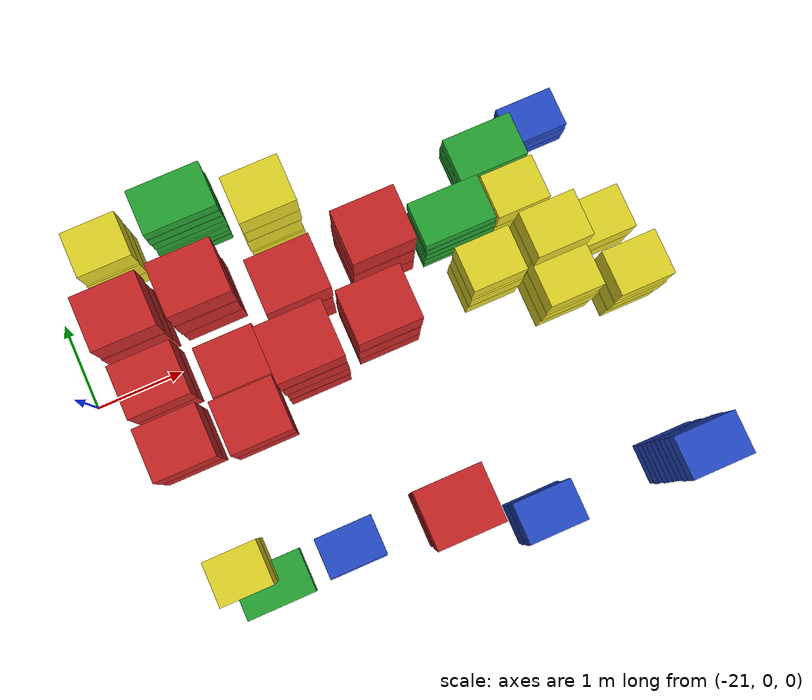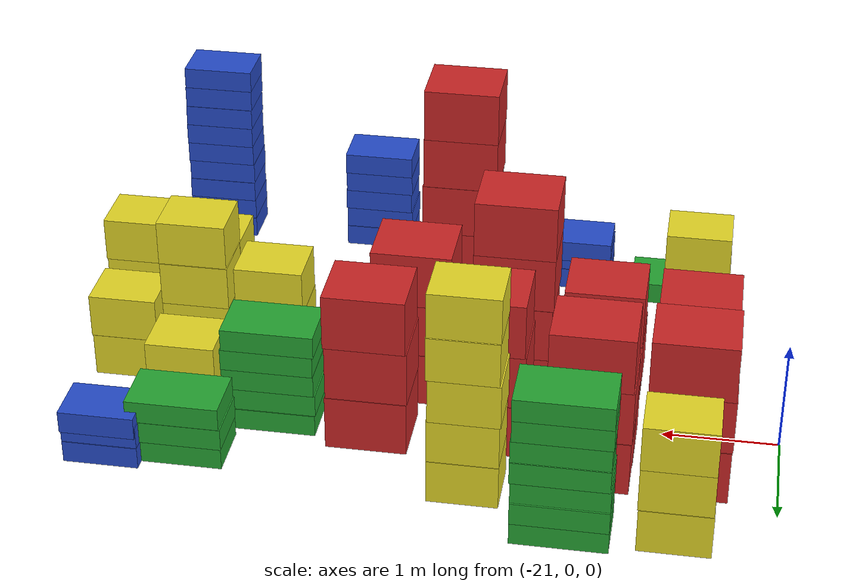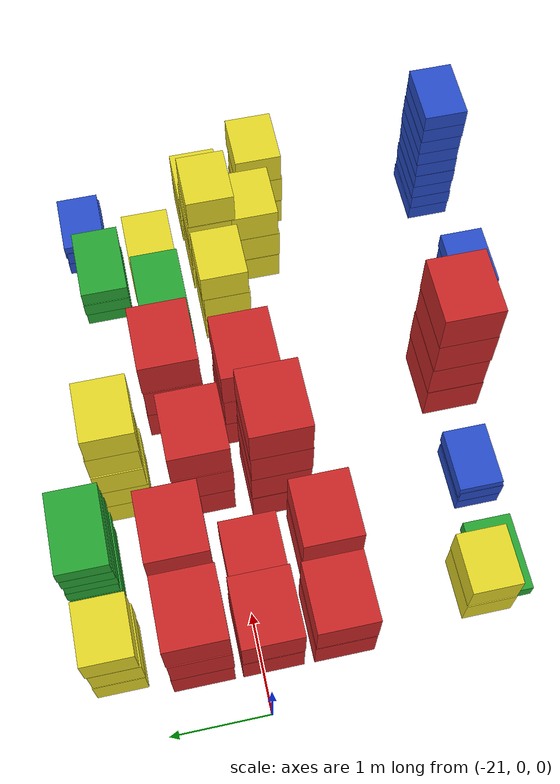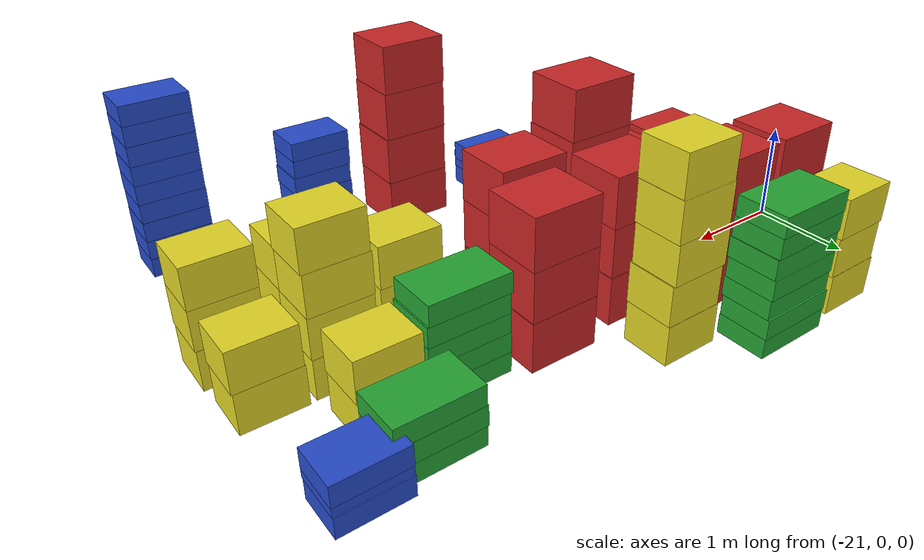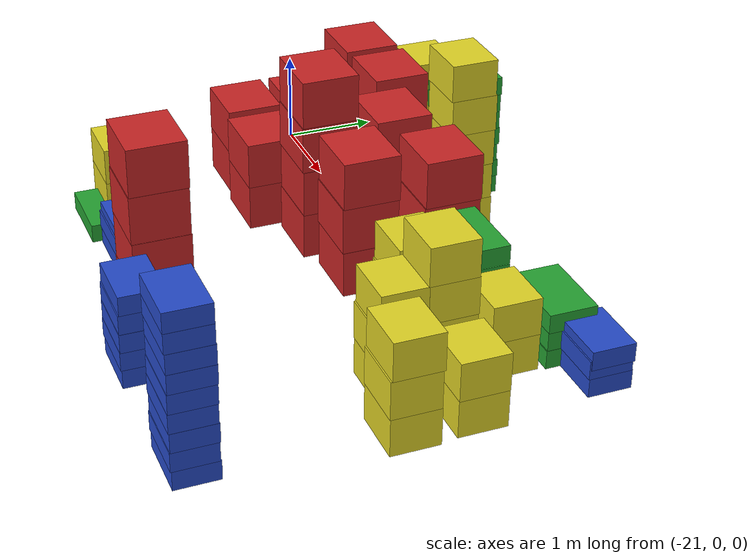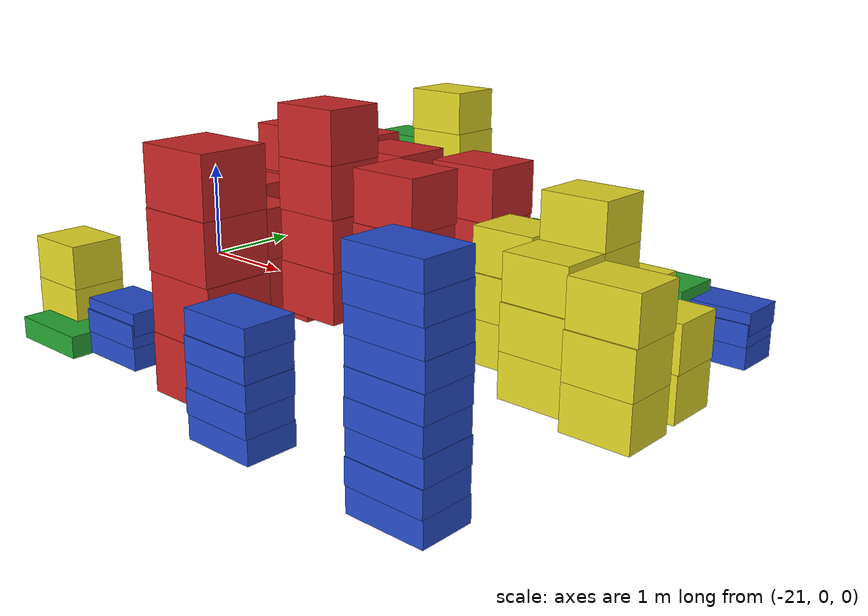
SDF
<sdf version="1.6">
 <world name="default">
  <include><uri>model://sun</uri></include>
  <model name="baggage_C_x2_1">
   <model name="baggage_C_0">
    <static>1</static>
    <link name="link">
     <collision name="collision"><geometry><box><size>0.6 0.5 0.4</size></box></geometry></collision>
     <visual name="visual">
      <geometry><box><size>0.6 0.5 0.4</size></box></geometry>
      <material>
       <script><uri>file://media/materials/scripts/gazebo.material</uri><name>Gazebo/Yellow</name></script>
      </material>
     </visual>
    </link>
    <pose>0 0 0.2 0 -0 0</pose>
   </model>
   <model name="baggage_C_1">
    <static>1</static>
    <link name="link">
     <collision name="collision"><geometry><box><size>0.6 0.5 0.4</size></box></geometry></collision>
     <visual name="visual">
      <geometry><box><size>0.6 0.5 0.4</size></box></geometry>
      <material>
       <script><uri>file://media/materials/scripts/gazebo.material</uri><name>Gazebo/Yellow</name></script>
      </material>
     </visual>
    </link>
    <pose>0.0093 -0.002 0.6 0 -0 0</pose>
   </model>
   <pose>-20.1836 -2.27258 0 0 -0 0</pose>
  </model>
  <model name="baggage_D">
   <static>1</static>
   <link name="link">
    <collision name="collision"><geometry><box><size>0.8 0.5 0.2</size></box></geometry></collision>
    <visual name="visual">
     <geometry><box><size>0.8 0.5 0.2</size></box></geometry>
     <material>
      <script><uri>file://media/materials/scripts/gazebo.material</uri><name>Gazebo/Green</name></script>
     </material>
    </visual>
   </link>
   <pose>-19.9589 -2.53745 0 0 -0 0</pose>
  </model>
  <model name="baggage_B_x3_0">
   <model name="baggage_B_0">
    <static>1</static>
    <link name="link">
     <collision name="collision"><geometry><box><size>0.65 0.45 0.2</size></box></geometry></collision>
     <visual name="visual">
      <geometry><box><size>0.65 0.45 0.2</size></box></geometry>
      <material>
       <script><uri>file://media/materials/scripts/gazebo.material</uri><name>Gazebo/Blue</name></script>
      </material>
     </visual>
    </link>
    <pose>0 0 0.1 0 -0 0</pose>
   </model>
   <model name="baggage_B_1">
    <static>1</static>
    <link name="link">
     <collision name="collision"><geometry><box><size>0.65 0.45 0.2</size></box></geometry></collision>
     <visual name="visual">
      <geometry><box><size>0.65 0.45 0.2</size></box></geometry>
      <material>
       <script><uri>file://media/materials/scripts/gazebo.material</uri><name>Gazebo/Blue</name></script>
      </material>
     </visual>
    </link>
    <pose>0.0028 -0.0086 0.3 0 -0 0</pose>
   </model>
   <model name="baggage_B_2">
    <static>1</static>
    <link name="link">
     <collision name="collision"><geometry><box><size>0.65 0.45 0.2</size></box></geometry></collision>
     <visual name="visual">
      <geometry><box><size>0.65 0.45 0.2</size></box></geometry>
      <material>
       <script><uri>file://media/materials/scripts/gazebo.material</uri><name>Gazebo/Blue</name></script>
      </material>
     </visual>
    </link>
    <pose>0.0092 0.006 0.4 0 -0 0</pose>
   </model>
   <pose>-19.0322 -2.49703 0 0 -0 0</pose>
  </model>
  <model name="baggage_A_x4_1">
   <model name="baggage_A_0">
    <static>1</static>
    <link name="link">
     <collision name="collision"><geometry><box><size>0.7 0.6 0.5</size></box></geometry></collision>
     <visual name="visual">
      <geometry><box><size>0.7 0.6 0.5</size></box></geometry>
      <material>
       <script><uri>file://media/materials/scripts/gazebo.material</uri><name>Gazebo/Red</name></script>
      </material>
     </visual>
    </link>
    <pose>0 0 0.25 0 -0 0</pose>
   </model>
   <model name="baggage_A_1">
    <static>1</static>
    <link name="link">
     <collision name="collision"><geometry><box><size>0.7 0.6 0.5</size></box></geometry></collision>
     <visual name="visual">
      <geometry><box><size>0.7 0.6 0.5</size></box></geometry>
      <material>
       <script><uri>file://media/materials/scripts/gazebo.material</uri><name>Gazebo/Red</name></script>
      </material>
     </visual>
    </link>
    <pose>0.0053 0.0033 0.75 0 -0 0</pose>
   </model>
   <model name="baggage_A_2">
    <static>1</static>
    <link name="link">
     <collision name="collision"><geometry><box><size>0.7 0.6 0.5</size></box></geometry></collision>
     <visual name="visual">
      <geometry><box><size>0.7 0.6 0.5</size></box></geometry>
      <material>
       <script><uri>file://media/materials/scripts/gazebo.material</uri><name>Gazebo/Red</name></script>
      </material>
     </visual>
    </link>
    <pose>-0.0056 -0.0003 1.25 0 -0 0</pose>
   </model>
   <model name="baggage_A_3">
    <static>1</static>
    <link name="link">
     <collision name="collision"><geometry><box><size>0.7 0.6 0.5</size></box></geometry></collision>
     <visual name="visual">
      <geometry><box><size>0.7 0.6 0.5</size></box></geometry>
      <material>
       <script><uri>file://media/materials/scripts/gazebo.material</uri><name>Gazebo/Red</name></script>
      </material>
     </visual>
    </link>
    <pose>-0.0098 0.0065 1.75 0 -0 0</pose>
   </model>
   <pose>-17.8916 -2.53612 0 0 -0 0</pose>
  </model>
  <model name="baggage_B_x5_1">
   <model name="baggage_B_0">
    <static>1</static>
    <link name="link">
     <collision name="collision"><geometry><box><size>0.65 0.45 0.2</size></box></geometry></collision>
     <visual name="visual">
      <geometry><box><size>0.65 0.45 0.2</size></box></geometry>
      <material>
       <script><uri>file://media/materials/scripts/gazebo.material</uri><name>Gazebo/Blue</name></script>
      </material>
     </visual>
    </link>
    <pose>0 0 0.1 0 -0 0</pose>
   </model>
   <model name="baggage_B_1">
    <static>1</static>
    <link name="link">
     <collision name="collision"><geometry><box><size>0.65 0.45 0.2</size></box></geometry></collision>
     <visual name="visual">
      <geometry><box><size>0.65 0.45 0.2</size></box></geometry>
      <material>
       <script><uri>file://media/materials/scripts/gazebo.material</uri><name>Gazebo/Blue</name></script>
      </material>
     </visual>
    </link>
    <pose>-0.0014 -0.0091 0.3 0 -0 0</pose>
   </model>
   <model name="baggage_B_2">
    <static>1</static>
    <link name="link">
     <collision name="collision"><geometry><box><size>0.65 0.45 0.2</size></box></geometry></collision>
     <visual name="visual">
      <geometry><box><size>0.65 0.45 0.2</size></box></geometry>
      <material>
       <script><uri>file://media/materials/scripts/gazebo.material</uri><name>Gazebo/Blue</name></script>
      </material>
     </visual>
    </link>
    <pose>0.0076 -0.0066 0.5 0 -0 0</pose>
   </model>
   <model name="baggage_B_3">
    <static>1</static>
    <link name="link">
     <collision name="collision"><geometry><box><size>0.65 0.45 0.2</size></box></geometry></collision>
     <visual name="visual">
      <geometry><box><size>0.65 0.45 0.2</size></box></geometry>
      <material>
       <script><uri>file://media/materials/scripts/gazebo.material</uri><name>Gazebo/Blue</name></script>
      </material>
     </visual>
    </link>
    <pose>0 -0.0032 0.7 0 -0 0</pose>
   </model>
   <model name="baggage_B_4">
    <static>1</static>
    <link name="link">
     <collision name="collision"><geometry><box><size>0.65 0.45 0.2</size></box></geometry></collision>
     <visual name="visual">
      <geometry><box><size>0.65 0.45 0.2</size></box></geometry>
      <material>
       <script><uri>file://media/materials/scripts/gazebo.material</uri><name>Gazebo/Blue</name></script>
      </material>
     </visual>
    </link>
    <pose>0.0023 0.0073 0.9 0 -0 0</pose>
   </model>
   <pose>-17.0203 -2.97574 0 0 -0 0</pose>
  </model>
  <model name="baggage_A_x2">
   <model name="baggage_A_0">
    <static>1</static>
    <link name="link">
     <collision name="collision"><geometry><box><size>0.7 0.6 0.5</size></box></geometry></collision>
     <visual name="visual">
      <geometry><box><size>0.7 0.6 0.5</size></box></geometry>
      <material>
       <script><uri>file://media/materials/scripts/gazebo.material</uri><name>Gazebo/Red</name></script>
      </material>
     </visual>
    </link>
    <pose>0 0 0.25 0 -0 0</pose>
   </model>
   <model name="baggage_A_1">
    <static>1</static>
    <link name="link">
     <collision name="collision"><geometry><box><size>0.7 0.6 0.5</size></box></geometry></collision>
     <visual name="visual">
      <geometry><box><size>0.7 0.6 0.5</size></box></geometry>
      <material>
       <script><uri>file://media/materials/scripts/gazebo.material</uri><name>Gazebo/Red</name></script>
      </material>
     </visual>
    </link>
    <pose>0.0063 -0.0062 0.75 0 -0 0</pose>
   </model>
   <pose>-20.2468 -0.800341 0 0 -0 0</pose>
  </model>
  <model name="baggage_A_x2_0">
   <model name="baggage_A_0">
    <static>1</static>
    <link name="link">
     <collision name="collision"><geometry><box><size>0.7 0.6 0.5</size></box></geometry></collision>
     <visual name="visual">
      <geometry><box><size>0.7 0.6 0.5</size></box></geometry>
      <material>
       <script><uri>file://media/materials/scripts/gazebo.material</uri><name>Gazebo/Red</name></script>
      </material>
     </visual>
    </link>
    <pose>0 0 0.25 0 -0 0</pose>
   </model>
   <model name="baggage_A_1">
    <static>1</static>
    <link name="link">
     <collision name="collision"><geometry><box><size>0.7 0.6 0.5</size></box></geometry></collision>
     <visual name="visual">
      <geometry><box><size>0.7 0.6 0.5</size></box></geometry>
      <material>
       <script><uri>file://media/materials/scripts/gazebo.material</uri><name>Gazebo/Red</name></script>
      </material>
     </visual>
    </link>
    <pose>0.0063 -0.0062 0.75 0 -0 0</pose>
   </model>
   <pose>-20.2435 -0.098319 0 0 -0 0</pose>
  </model>
  <model name="baggage_A_x2_1">
   <model name="baggage_A_0">
    <static>1</static>
    <link name="link">
     <collision name="collision"><geometry><box><size>0.7 0.6 0.5</size></box></geometry></collision>
     <visual name="visual">
      <geometry><box><size>0.7 0.6 0.5</size></box></geometry>
      <material>
       <script><uri>file://media/materials/scripts/gazebo.material</uri><name>Gazebo/Red</name></script>
      </material>
     </visual>
    </link>
    <pose>0 0 0.25 0 -0 0</pose>
   </model>
   <model name="baggage_A_1">
    <static>1</static>
    <link name="link">
     <collision name="collision"><geometry><box><size>0.7 0.6 0.5</size></box></geometry></collision>
     <visual name="visual">
      <geometry><box><size>0.7 0.6 0.5</size></box></geometry>
      <material>
       <script><uri>file://media/materials/scripts/gazebo.material</uri><name>Gazebo/Red</name></script>
      </material>
     </visual>
    </link>
    <pose>0.0063 -0.0062 0.75 0 -0 0</pose>
   </model>
   <pose>-19.4219 -0.855272 0 0 -0 0</pose>
  </model>
  <model name="baggage_A">
   <static>1</static>
   <link name="link">
    <collision name="collision"><geometry><box><size>0.7 0.6 0.5</size></box></geometry></collision>
    <visual name="visual">
     <geometry><box><size>0.7 0.6 0.5</size></box></geometry>
     <material>
      <script><uri>file://media/materials/scripts/gazebo.material</uri><name>Gazebo/Red</name></script>
     </material>
    </visual>
   </link>
   <pose>-19.4231 -0.139676 0 0 -0 0</pose>
  </model>
  <model name="baggage_C_x3">
   <model name="baggage_C_0">
    <static>1</static>
    <link name="link">
     <collision name="collision"><geometry><box><size>0.6 0.5 0.4</size></box></geometry></collision>
     <visual name="visual">
      <geometry><box><size>0.6 0.5 0.4</size></box></geometry>
      <material>
       <script><uri>file://media/materials/scripts/gazebo.material</uri><name>Gazebo/Yellow</name></script>
      </material>
     </visual>
    </link>
    <pose>0 0 0.2 0 -0 0</pose>
   </model>
   <model name="baggage_C_1">
    <static>1</static>
    <link name="link">
     <collision name="collision"><geometry><box><size>0.6 0.5 0.4</size></box></geometry></collision>
     <visual name="visual">
      <geometry><box><size>0.6 0.5 0.4</size></box></geometry>
      <material>
       <script><uri>file://media/materials/scripts/gazebo.material</uri><name>Gazebo/Yellow</name></script>
      </material>
     </visual>
    </link>
    <pose>0.0062 -0.0069 0.6 0 -0 0</pose>
   </model>
   <model name="baggage_C_2">
    <static>1</static>
    <link name="link">
     <collision name="collision"><geometry><box><size>0.6 0.5 0.4</size></box></geometry></collision>
     <visual name="visual">
      <geometry><box><size>0.6 0.5 0.4</size></box></geometry>
      <material>
       <script><uri>file://media/materials/scripts/gazebo.material</uri><name>Gazebo/Yellow</name></script>
      </material>
     </visual>
    </link>
    <pose>0.0089 0.0083 1 0 -0 0</pose>
   </model>
   <pose>-15.1785 -1.03056 0 0 -0 0</pose>
  </model>
  <model name="baggage_C_x2_3">
   <model name="baggage_C_0">
    <static>1</static>
    <link name="link">
     <collision name="collision"><geometry><box><size>0.6 0.5 0.4</size></box></geometry></collision>
     <visual name="visual">
      <geometry><box><size>0.6 0.5 0.4</size></box></geometry>
      <material>
       <script><uri>file://media/materials/scripts/gazebo.material</uri><name>Gazebo/Yellow</name></script>
      </material>
     </visual>
    </link>
    <pose>0 0 0.2 0 -0 0</pose>
   </model>
   <model name="baggage_C_1">
    <static>1</static>
    <link name="link">
     <collision name="collision"><geometry><box><size>0.6 0.5 0.4</size></box></geometry></collision>
     <visual name="visual">
      <geometry><box><size>0.6 0.5 0.4</size></box></geometry>
      <material>
       <script><uri>file://media/materials/scripts/gazebo.material</uri><name>Gazebo/Yellow</name></script>
      </material>
     </visual>
    </link>
    <pose>0.0093 -0.002 0.6 0 -0 0</pose>
   </model>
   <pose>-15.2116 -0.361325 0 0 -0 0</pose>
  </model>
  <model name="baggage_C_x4">
   <model name="baggage_C_0">
    <static>1</static>
    <link name="link">
     <collision name="collision"><geometry><box><size>0.6 0.5 0.4</size></box></geometry></collision>
     <visual name="visual">
      <geometry><box><size>0.6 0.5 0.4</size></box></geometry>
      <material>
       <script><uri>file://media/materials/scripts/gazebo.material</uri><name>Gazebo/Yellow</name></script>
      </material>
     </visual>
    </link>
    <pose>0 0 0.2 0 -0 0</pose>
   </model>
   <model name="baggage_C_1">
    <static>1</static>
    <link name="link">
     <collision name="collision"><geometry><box><size>0.6 0.5 0.4</size></box></geometry></collision>
     <visual name="visual">
      <geometry><box><size>0.6 0.5 0.4</size></box></geometry>
      <material>
       <script><uri>file://media/materials/scripts/gazebo.material</uri><name>Gazebo/Yellow</name></script>
      </material>
     </visual>
    </link>
    <pose>0.0008 -0.0083 0.6 0 -0 0</pose>
   </model>
   <model name="baggage_C_2">
    <static>1</static>
    <link name="link">
     <collision name="collision"><geometry><box><size>0.6 0.5 0.4</size></box></geometry></collision>
     <visual name="visual">
      <geometry><box><size>0.6 0.5 0.4</size></box></geometry>
      <material>
       <script><uri>file://media/materials/scripts/gazebo.material</uri><name>Gazebo/Yellow</name></script>
      </material>
     </visual>
    </link>
    <pose>0.0001 0.0014 1 0 -0 0</pose>
   </model>
   <model name="baggage_C_3">
    <static>1</static>
    <link name="link">
     <collision name="collision"><geometry><box><size>0.6 0.5 0.4</size></box></geometry></collision>
     <visual name="visual">
      <geometry><box><size>0.6 0.5 0.4</size></box></geometry>
      <material>
       <script><uri>file://media/materials/scripts/gazebo.material</uri><name>Gazebo/Yellow</name></script>
      </material>
     </visual>
    </link>
    <pose>0.007 -0.0089 1.4 0 -0 0</pose>
   </model>
   <pose>-15.8734 -0.374442 0 0 -0 0</pose>
  </model>
  <model name="baggage_C_x3_0">
   <model name="baggage_C_0">
    <static>1</static>
    <link name="link">
     <collision name="collision"><geometry><box><size>0.6 0.5 0.4</size></box></geometry></collision>
     <visual name="visual">
      <geometry><box><size>0.6 0.5 0.4</size></box></geometry>
      <material>
       <script><uri>file://media/materials/scripts/gazebo.material</uri><name>Gazebo/Yellow</name></script>
      </material>
     </visual>
    </link>
    <pose>0 0 0.2 0 -0 0</pose>
   </model>
   <model name="baggage_C_1">
    <static>1</static>
    <link name="link">
     <collision name="collision"><geometry><box><size>0.6 0.5 0.4</size></box></geometry></collision>
     <visual name="visual">
      <geometry><box><size>0.6 0.5 0.4</size></box></geometry>
      <material>
       <script><uri>file://media/materials/scripts/gazebo.material</uri><name>Gazebo/Yellow</name></script>
      </material>
     </visual>
    </link>
    <pose>0.0062 -0.0069 0.6 0 -0 0</pose>
   </model>
   <model name="baggage_C_2">
    <static>1</static>
    <link name="link">
     <collision name="collision"><geometry><box><size>0.6 0.5 0.4</size></box></geometry></collision>
     <visual name="visual">
      <geometry><box><size>0.6 0.5 0.4</size></box></geometry>
      <material>
       <script><uri>file://media/materials/scripts/gazebo.material</uri><name>Gazebo/Yellow</name></script>
      </material>
     </visual>
    </link>
    <pose>0.0089 0.0083 1 0 -0 0</pose>
   </model>
   <pose>-15.8831 -0.850413 0 0 -0 0</pose>
  </model>
  <model name="baggage_C_x2_5">
   <model name="baggage_C_0">
    <static>1</static>
    <link name="link">
     <collision name="collision"><geometry><box><size>0.6 0.5 0.4</size></box></geometry></collision>
     <visual name="visual">
      <geometry><box><size>0.6 0.5 0.4</size></box></geometry>
      <material>
       <script><uri>file://media/materials/scripts/gazebo.material</uri><name>Gazebo/Yellow</name></script>
      </material>
     </visual>
    </link>
    <pose>0 0 0.2 0 -0 0</pose>
   </model>
   <model name="baggage_C_1">
    <static>1</static>
    <link name="link">
     <collision name="collision"><geometry><box><size>0.6 0.5 0.4</size></box></geometry></collision>
     <visual name="visual">
      <geometry><box><size>0.6 0.5 0.4</size></box></geometry>
      <material>
       <script><uri>file://media/materials/scripts/gazebo.material</uri><name>Gazebo/Yellow</name></script>
      </material>
     </visual>
    </link>
    <pose>0.0093 -0.002 0.6 0 -0 0</pose>
   </model>
   <pose>-15.9123 0.292883 0 0 -0 0</pose>
  </model>
  <model name="baggage_C_x3_1">
   <model name="baggage_C_0">
    <static>1</static>
    <link name="link">
     <collision name="collision"><geometry><box><size>0.6 0.5 0.4</size></box></geometry></collision>
     <visual name="visual">
      <geometry><box><size>0.6 0.5 0.4</size></box></geometry>
      <material>
       <script><uri>file://media/materials/scripts/gazebo.material</uri><name>Gazebo/Yellow</name></script>
      </material>
     </visual>
    </link>
    <pose>0 0 0.2 0 -0 0</pose>
   </model>
   <model name="baggage_C_1">
    <static>1</static>
    <link name="link">
     <collision name="collision"><geometry><box><size>0.6 0.5 0.4</size></box></geometry></collision>
     <visual name="visual">
      <geometry><box><size>0.6 0.5 0.4</size></box></geometry>
      <material>
       <script><uri>file://media/materials/scripts/gazebo.material</uri><name>Gazebo/Yellow</name></script>
      </material>
     </visual>
    </link>
    <pose>0.0062 -0.0069 0.6 0 -0 0</pose>
   </model>
   <model name="baggage_C_2">
    <static>1</static>
    <link name="link">
     <collision name="collision"><geometry><box><size>0.6 0.5 0.4</size></box></geometry></collision>
     <visual name="visual">
      <geometry><box><size>0.6 0.5 0.4</size></box></geometry>
      <material>
       <script><uri>file://media/materials/scripts/gazebo.material</uri><name>Gazebo/Yellow</name></script>
      </material>
     </visual>
    </link>
    <pose>0.0089 0.0083 1 0 -0 0</pose>
   </model>
   <pose>-16.5394 -0.394414 0 0 -0 0</pose>
  </model>
  <model name="baggage_D_x5_1">
   <model name="baggage_D_0">
    <static>1</static>
    <link name="link">
     <collision name="collision"><geometry><box><size>0.8 0.5 0.2</size></box></geometry></collision>
     <visual name="visual">
      <geometry><box><size>0.8 0.5 0.2</size></box></geometry>
      <material>
       <script><uri>file://media/materials/scripts/gazebo.material</uri><name>Gazebo/Green</name></script>
      </material>
     </visual>
    </link>
    <pose>0 0 0.1 0 -0 0</pose>
   </model>
   <model name="baggage_D_1">
    <static>1</static>
    <link name="link">
     <collision name="collision"><geometry><box><size>0.8 0.5 0.2</size></box></geometry></collision>
     <visual name="visual">
      <geometry><box><size>0.8 0.5 0.2</size></box></geometry>
      <material>
       <script><uri>file://media/materials/scripts/gazebo.material</uri><name>Gazebo/Green</name></script>
      </material>
     </visual>
    </link>
    <pose>-0.0065 -0.0092 0.3 0 -0 0</pose>
   </model>
   <model name="baggage_D_2">
    <static>1</static>
    <link name="link">
     <collision name="collision"><geometry><box><size>0.8 0.5 0.2</size></box></geometry></collision>
     <visual name="visual">
      <geometry><box><size>0.8 0.5 0.2</size></box></geometry>
      <material>
       <script><uri>file://media/materials/scripts/gazebo.material</uri><name>Gazebo/Green</name></script>
      </material>
     </visual>
    </link>
    <pose>0.005 -0.0052 0.5 0 -0 0</pose>
   </model>
   <model name="baggage_D_3">
    <static>1</static>
    <link name="link">
     <collision name="collision"><geometry><box><size>0.8 0.5 0.2</size></box></geometry></collision>
     <visual name="visual">
      <geometry><box><size>0.8 0.5 0.2</size></box></geometry>
      <material>
       <script><uri>file://media/materials/scripts/gazebo.material</uri><name>Gazebo/Green</name></script>
      </material>
     </visual>
    </link>
    <pose>0.0074 0.0002 0.7 0 -0 0</pose>
   </model>
   <model name="baggage_D_4">
    <static>1</static>
    <link name="link">
     <collision name="collision"><geometry><box><size>0.8 0.5 0.2</size></box></geometry></collision>
     <visual name="visual">
      <geometry><box><size>0.8 0.5 0.2</size></box></geometry>
      <material>
       <script><uri>file://media/materials/scripts/gazebo.material</uri><name>Gazebo/Green</name></script>
      </material>
     </visual>
    </link>
    <pose>-0.006 0.0081 0.9 0 -0 0</pose>
   </model>
   <pose>-16.658 0.267608 0 0 -0 0</pose>
  </model>
  <model name="baggage_B_x3_1">
   <model name="baggage_B_0">
    <static>1</static>
    <link name="link">
     <collision name="collision"><geometry><box><size>0.65 0.45 0.2</size></box></geometry></collision>
     <visual name="visual">
      <geometry><box><size>0.65 0.45 0.2</size></box></geometry>
      <material>
       <script><uri>file://media/materials/scripts/gazebo.material</uri><name>Gazebo/Blue</name></script>
      </material>
     </visual>
    </link>
    <pose>0 0 0.1 0 -0 0</pose>
   </model>
   <model name="baggage_B_1">
    <static>1</static>
    <link name="link">
     <collision name="collision"><geometry><box><size>0.65 0.45 0.2</size></box></geometry></collision>
     <visual name="visual">
      <geometry><box><size>0.65 0.45 0.2</size></box></geometry>
      <material>
       <script><uri>file://media/materials/scripts/gazebo.material</uri><name>Gazebo/Blue</name></script>
      </material>
     </visual>
    </link>
    <pose>0.0028 -0.0086 0.3 0 -0 0</pose>
   </model>
   <model name="baggage_B_2">
    <static>1</static>
    <link name="link">
     <collision name="collision"><geometry><box><size>0.65 0.45 0.2</size></box></geometry></collision>
     <visual name="visual">
      <geometry><box><size>0.65 0.45 0.2</size></box></geometry>
      <material>
       <script><uri>file://media/materials/scripts/gazebo.material</uri><name>Gazebo/Blue</name></script>
      </material>
     </visual>
    </link>
    <pose>0.0092 0.006 0.4 0 -0 0</pose>
   </model>
   <pose>-15.3624 0.991484 0 0 -0 0</pose>
  </model>
  <model name="baggage_B_x9_2">
   <model name="baggage_B_0">
    <static>1</static>
    <link name="link">
     <collision name="collision"><geometry><box><size>0.65 0.45 0.2</size></box></geometry></collision>
     <visual name="visual">
      <geometry><box><size>0.65 0.45 0.2</size></box></geometry>
      <material>
       <script><uri>file://media/materials/scripts/gazebo.material</uri><name>Gazebo/Blue</name></script>
      </material>
     </visual>
    </link>
    <pose>0 0 0.1 0 -0 0</pose>
   </model>
   <model name="baggage_B_1">
    <static>1</static>
    <link name="link">
     <collision name="collision"><geometry><box><size>0.65 0.45 0.2</size></box></geometry></collision>
     <visual name="visual">
      <geometry><box><size>0.65 0.45 0.2</size></box></geometry>
      <material>
       <script><uri>file://media/materials/scripts/gazebo.material</uri><name>Gazebo/Blue</name></script>
      </material>
     </visual>
    </link>
    <pose>0.001 -0.0095 0.3 0 -0 0</pose>
   </model>
   <model name="baggage_B_2">
    <static>1</static>
    <link name="link">
     <collision name="collision"><geometry><box><size>0.65 0.45 0.2</size></box></geometry></collision>
     <visual name="visual">
      <geometry><box><size>0.65 0.45 0.2</size></box></geometry>
      <material>
       <script><uri>file://media/materials/scripts/gazebo.material</uri><name>Gazebo/Blue</name></script>
      </material>
     </visual>
    </link>
    <pose>0.0028 -0.0029 0.5 0 -0 0</pose>
   </model>
   <model name="baggage_B_3">
    <static>1</static>
    <link name="link">
     <collision name="collision"><geometry><box><size>0.65 0.45 0.2</size></box></geometry></collision>
     <visual name="visual">
      <geometry><box><size>0.65 0.45 0.2</size></box></geometry>
      <material>
       <script><uri>file://media/materials/scripts/gazebo.material</uri><name>Gazebo/Blue</name></script>
      </material>
     </visual>
    </link>
    <pose>-0.0004 -0.0089 0.7 0 -0 0</pose>
   </model>
   <model name="baggage_B_4">
    <static>1</static>
    <link name="link">
     <collision name="collision"><geometry><box><size>0.65 0.45 0.2</size></box></geometry></collision>
     <visual name="visual">
      <geometry><box><size>0.65 0.45 0.2</size></box></geometry>
      <material>
       <script><uri>file://media/materials/scripts/gazebo.material</uri><name>Gazebo/Blue</name></script>
      </material>
     </visual>
    </link>
    <pose>0.0034 -0.0062 0.9 0 -0 0</pose>
   </model>
   <model name="baggage_B_5">
    <static>1</static>
    <link name="link">
     <collision name="collision"><geometry><box><size>0.65 0.45 0.2</size></box></geometry></collision>
     <visual name="visual">
      <geometry><box><size>0.65 0.45 0.2</size></box></geometry>
      <material>
       <script><uri>file://media/materials/scripts/gazebo.material</uri><name>Gazebo/Blue</name></script>
      </material>
     </visual>
    </link>
    <pose>0.0037 -0.0012 1.1 0 -0 0</pose>
   </model>
   <model name="baggage_B_6">
    <static>1</static>
    <link name="link">
     <collision name="collision"><geometry><box><size>0.65 0.45 0.2</size></box></geometry></collision>
     <visual name="visual">
      <geometry><box><size>0.65 0.45 0.2</size></box></geometry>
      <material>
       <script><uri>file://media/materials/scripts/gazebo.material</uri><name>Gazebo/Blue</name></script>
      </material>
     </visual>
    </link>
    <pose>0 -0.0018 1.3 0 -0 0</pose>
   </model>
   <model name="baggage_B_7">
    <static>1</static>
    <link name="link">
     <collision name="collision"><geometry><box><size>0.65 0.45 0.2</size></box></geometry></collision>
     <visual name="visual">
      <geometry><box><size>0.65 0.45 0.2</size></box></geometry>
      <material>
       <script><uri>file://media/materials/scripts/gazebo.material</uri><name>Gazebo/Blue</name></script>
      </material>
     </visual>
    </link>
    <pose>-0.0036 -0.0074 1.5 0 -0 0</pose>
   </model>
   <model name="baggage_B_8">
    <static>1</static>
    <link name="link">
     <collision name="collision"><geometry><box><size>0.65 0.45 0.2</size></box></geometry></collision>
     <visual name="visual">
      <geometry><box><size>0.65 0.45 0.2</size></box></geometry>
      <material>
       <script><uri>file://media/materials/scripts/gazebo.material</uri><name>Gazebo/Blue</name></script>
      </material>
     </visual>
    </link>
    <pose>-0.0068 -0.0081 1.7 0 -0 0</pose>
   </model>
   <pose>-15.436 -2.96206 0 0 -0 0</pose>
  </model>
  <model name="baggage_A_x3">
   <model name="baggage_A_0">
    <static>1</static>
    <link name="link">
     <collision name="collision"><geometry><box><size>0.7 0.6 0.5</size></box></geometry></collision>
     <visual name="visual">
      <geometry><box><size>0.7 0.6 0.5</size></box></geometry>
      <material>
       <script><uri>file://media/materials/scripts/gazebo.material</uri><name>Gazebo/Red</name></script>
      </material>
     </visual>
    </link>
    <pose>0 0 0.25 0 -0 0</pose>
   </model>
   <model name="baggage_A_1">
    <static>1</static>
    <link name="link">
     <collision name="collision"><geometry><box><size>0.7 0.6 0.5</size></box></geometry></collision>
     <visual name="visual">
      <geometry><box><size>0.7 0.6 0.5</size></box></geometry>
      <material>
       <script><uri>file://media/materials/scripts/gazebo.material</uri><name>Gazebo/Red</name></script>
      </material>
     </visual>
    </link>
    <pose>-0.006 -0.0077 0.75 0 -0 0</pose>
   </model>
   <model name="baggage_A_2">
    <static>1</static>
    <link name="link">
     <collision name="collision"><geometry><box><size>0.7 0.6 0.5</size></box></geometry></collision>
     <visual name="visual">
      <geometry><box><size>0.7 0.6 0.5</size></box></geometry>
      <material>
       <script><uri>file://media/materials/scripts/gazebo.material</uri><name>Gazebo/Red</name></script>
      </material>
     </visual>
    </link>
    <pose>0.0045 0.0005 1.25 0 -0 0</pose>
   </model>
   <pose>-20.2424 0.578684 0 0 -0 0</pose>
  </model>
  <model name="baggage_A_x3_0">
   <model name="baggage_A_0">
    <static>1</static>
    <link name="link">
     <collision name="collision"><geometry><box><size>0.7 0.6 0.5</size></box></geometry></collision>
     <visual name="visual">
      <geometry><box><size>0.7 0.6 0.5</size></box></geometry>
      <material>
       <script><uri>file://media/materials/scripts/gazebo.material</uri><name>Gazebo/Red</name></script>
      </material>
     </visual>
    </link>
    <pose>0 0 0.25 0 -0 0</pose>
   </model>
   <model name="baggage_A_1">
    <static>1</static>
    <link name="link">
     <collision name="collision"><geometry><box><size>0.7 0.6 0.5</size></box></geometry></collision>
     <visual name="visual">
      <geometry><box><size>0.7 0.6 0.5</size></box></geometry>
      <material>
       <script><uri>file://media/materials/scripts/gazebo.material</uri><name>Gazebo/Red</name></script>
      </material>
     </visual>
    </link>
    <pose>-0.006 -0.0077 0.75 0 -0 0</pose>
   </model>
   <model name="baggage_A_2">
    <static>1</static>
    <link name="link">
     <collision name="collision"><geometry><box><size>0.7 0.6 0.5</size></box></geometry></collision>
     <visual name="visual">
      <geometry><box><size>0.7 0.6 0.5</size></box></geometry>
      <material>
       <script><uri>file://media/materials/scripts/gazebo.material</uri><name>Gazebo/Red</name></script>
      </material>
     </visual>
    </link>
    <pose>0.0045 0.0005 1.25 0 -0 0</pose>
   </model>
   <pose>-19.4303 0.595638 0 0 -0 0</pose>
  </model>
  <model name="baggage_D_x3_1">
   <model name="baggage_D_0">
    <static>1</static>
    <link name="link">
     <collision name="collision"><geometry><box><size>0.8 0.5 0.2</size></box></geometry></collision>
     <visual name="visual">
      <geometry><box><size>0.8 0.5 0.2</size></box></geometry>
      <material>
       <script><uri>file://media/materials/scripts/gazebo.material</uri><name>Gazebo/Green</name></script>
      </material>
     </visual>
    </link>
    <pose>0 0 0.1 0 -0 0</pose>
   </model>
   <model name="baggage_D_1">
    <static>1</static>
    <link name="link">
     <collision name="collision"><geometry><box><size>0.8 0.5 0.2</size></box></geometry></collision>
     <visual name="visual">
      <geometry><box><size>0.8 0.5 0.2</size></box></geometry>
      <material>
       <script><uri>file://media/materials/scripts/gazebo.material</uri><name>Gazebo/Green</name></script>
      </material>
     </visual>
    </link>
    <pose>-0.0056 0.0083 0.3 0 -0 0</pose>
   </model>
   <model name="baggage_D_2">
    <static>1</static>
    <link name="link">
     <collision name="collision"><geometry><box><size>0.8 0.5 0.2</size></box></geometry></collision>
     <visual name="visual">
      <geometry><box><size>0.8 0.5 0.2</size></box></geometry>
      <material>
       <script><uri>file://media/materials/scripts/gazebo.material</uri><name>Gazebo/Green</name></script>
      </material>
     </visual>
    </link>
    <pose>0.0053 0.0057 0.5 0 -0 0</pose>
   </model>
   <pose>-15.982 0.860262 0 0 -0 0</pose>
  </model>
  <model name="baggage_C_x3_2">
   <model name="baggage_C_0">
    <static>1</static>
    <link name="link">
     <collision name="collision"><geometry><box><size>0.6 0.5 0.4</size></box></geometry></collision>
     <visual name="visual">
      <geometry><box><size>0.6 0.5 0.4</size></box></geometry>
      <material>
       <script><uri>file://media/materials/scripts/gazebo.material</uri><name>Gazebo/Yellow</name></script>
      </material>
     </visual>
    </link>
    <pose>0 0 0.2 0 -0 0</pose>
   </model>
   <model name="baggage_C_1">
    <static>1</static>
    <link name="link">
     <collision name="collision"><geometry><box><size>0.6 0.5 0.4</size></box></geometry></collision>
     <visual name="visual">
      <geometry><box><size>0.6 0.5 0.4</size></box></geometry>
      <material>
       <script><uri>file://media/materials/scripts/gazebo.material</uri><name>Gazebo/Yellow</name></script>
      </material>
     </visual>
    </link>
    <pose>0.0062 -0.0069 0.6 0 -0 0</pose>
   </model>
   <model name="baggage_C_2">
    <static>1</static>
    <link name="link">
     <collision name="collision"><geometry><box><size>0.6 0.5 0.4</size></box></geometry></collision>
     <visual name="visual">
      <geometry><box><size>0.6 0.5 0.4</size></box></geometry>
      <material>
       <script><uri>file://media/materials/scripts/gazebo.material</uri><name>Gazebo/Yellow</name></script>
      </material>
     </visual>
    </link>
    <pose>0.0089 0.0083 1 0 -0 0</pose>
   </model>
   <pose>-20.1926 1.35849 0 0 -0 0</pose>
  </model>
  <model name="baggage_D_x7">
   <model name="baggage_D_0">
    <static>1</static>
    <link name="link">
     <collision name="collision"><geometry><box><size>0.8 0.5 0.2</size></box></geometry></collision>
     <visual name="visual">
      <geometry><box><size>0.8 0.5 0.2</size></box></geometry>
      <material>
       <script><uri>file://media/materials/scripts/gazebo.material</uri><name>Gazebo/Green</name></script>
      </material>
     </visual>
    </link>
    <pose>0 0 0.1 0 -0 0</pose>
   </model>
   <model name="baggage_D_1">
    <static>1</static>
    <link name="link">
     <collision name="collision"><geometry><box><size>0.8 0.5 0.2</size></box></geometry></collision>
     <visual name="visual">
      <geometry><box><size>0.8 0.5 0.2</size></box></geometry>
      <material>
       <script><uri>file://media/materials/scripts/gazebo.material</uri><name>Gazebo/Green</name></script>
      </material>
     </visual>
    </link>
    <pose>0.0009 0.0063 0.3 0 -0 0</pose>
   </model>
   <model name="baggage_D_2">
    <static>1</static>
    <link name="link">
     <collision name="collision"><geometry><box><size>0.8 0.5 0.2</size></box></geometry></collision>
     <visual name="visual">
      <geometry><box><size>0.8 0.5 0.2</size></box></geometry>
      <material>
       <script><uri>file://media/materials/scripts/gazebo.material</uri><name>Gazebo/Green</name></script>
      </material>
     </visual>
    </link>
    <pose>0.0011 -0.0098 0.5 0 -0 0</pose>
   </model>
   <model name="baggage_D_3">
    <static>1</static>
    <link name="link">
     <collision name="collision"><geometry><box><size>0.8 0.5 0.2</size></box></geometry></collision>
     <visual name="visual">
      <geometry><box><size>0.8 0.5 0.2</size></box></geometry>
      <material>
       <script><uri>file://media/materials/scripts/gazebo.material</uri><name>Gazebo/Green</name></script>
      </material>
     </visual>
    </link>
    <pose>0.0089 0.0055 0.7 0 -0 0</pose>
   </model>
   <model name="baggage_D_4">
    <static>1</static>
    <link name="link">
     <collision name="collision"><geometry><box><size>0.8 0.5 0.2</size></box></geometry></collision>
     <visual name="visual">
      <geometry><box><size>0.8 0.5 0.2</size></box></geometry>
      <material>
       <script><uri>file://media/materials/scripts/gazebo.material</uri><name>Gazebo/Green</name></script>
      </material>
     </visual>
    </link>
    <pose>0.009 -0.0056 0.9 0 -0 0</pose>
   </model>
   <model name="baggage_D_5">
    <static>1</static>
    <link name="link">
     <collision name="collision"><geometry><box><size>0.8 0.5 0.2</size></box></geometry></collision>
     <visual name="visual">
      <geometry><box><size>0.8 0.5 0.2</size></box></geometry>
      <material>
       <script><uri>file://media/materials/scripts/gazebo.material</uri><name>Gazebo/Green</name></script>
      </material>
     </visual>
    </link>
    <pose>0.0001 0.0013 1.1 0 -0 0</pose>
   </model>
   <model name="baggage_D_6">
    <static>1</static>
    <link name="link">
     <collision name="collision"><geometry><box><size>0.8 0.5 0.2</size></box></geometry></collision>
     <visual name="visual">
      <geometry><box><size>0.8 0.5 0.2</size></box></geometry>
      <material>
       <script><uri>file://media/materials/scripts/gazebo.material</uri><name>Gazebo/Green</name></script>
      </material>
     </visual>
    </link>
    <pose>0.0019 0.009 1.3 0 -0 0</pose>
   </model>
   <pose>-19.284 1.43551 0 0 -0 0</pose>
  </model>
  <model name="baggage_A_x4_3">
   <model name="baggage_A_0">
    <static>1</static>
    <link name="link">
     <collision name="collision"><geometry><box><size>0.7 0.6 0.5</size></box></geometry></collision>
     <visual name="visual">
      <geometry><box><size>0.7 0.6 0.5</size></box></geometry>
      <material>
       <script><uri>file://media/materials/scripts/gazebo.material</uri><name>Gazebo/Red</name></script>
      </material>
     </visual>
    </link>
    <pose>0 0 0.25 0 -0 0</pose>
   </model>
   <model name="baggage_A_1">
    <static>1</static>
    <link name="link">
     <collision name="collision"><geometry><box><size>0.7 0.6 0.5</size></box></geometry></collision>
     <visual name="visual">
      <geometry><box><size>0.7 0.6 0.5</size></box></geometry>
      <material>
       <script><uri>file://media/materials/scripts/gazebo.material</uri><name>Gazebo/Red</name></script>
      </material>
     </visual>
    </link>
    <pose>0.0053 0.0033 0.75 0 -0 0</pose>
   </model>
   <model name="baggage_A_2">
    <static>1</static>
    <link name="link">
     <collision name="collision"><geometry><box><size>0.7 0.6 0.5</size></box></geometry></collision>
     <visual name="visual">
      <geometry><box><size>0.7 0.6 0.5</size></box></geometry>
      <material>
       <script><uri>file://media/materials/scripts/gazebo.material</uri><name>Gazebo/Red</name></script>
      </material>
     </visual>
    </link>
    <pose>-0.0056 -0.0003 1.25 0 -0 0</pose>
   </model>
   <model name="baggage_A_3">
    <static>1</static>
    <link name="link">
     <collision name="collision"><geometry><box><size>0.7 0.6 0.5</size></box></geometry></collision>
     <visual name="visual">
      <geometry><box><size>0.7 0.6 0.5</size></box></geometry>
      <material>
       <script><uri>file://media/materials/scripts/gazebo.material</uri><name>Gazebo/Red</name></script>
      </material>
     </visual>
    </link>
    <pose>-0.0098 0.0065 1.75 0 -0 0</pose>
   </model>
   <pose>-18.6524 -0.522669 0 0 -0 0</pose>
  </model>
  <model name="baggage_A_x3_1">
   <model name="baggage_A_0">
    <static>1</static>
    <link name="link">
     <collision name="collision"><geometry><box><size>0.7 0.6 0.5</size></box></geometry></collision>
     <visual name="visual">
      <geometry><box><size>0.7 0.6 0.5</size></box></geometry>
      <material>
       <script><uri>file://media/materials/scripts/gazebo.material</uri><name>Gazebo/Red</name></script>
      </material>
     </visual>
    </link>
    <pose>0 0 0.25 0 -0 0</pose>
   </model>
   <model name="baggage_A_1">
    <static>1</static>
    <link name="link">
     <collision name="collision"><geometry><box><size>0.7 0.6 0.5</size></box></geometry></collision>
     <visual name="visual">
      <geometry><box><size>0.7 0.6 0.5</size></box></geometry>
      <material>
       <script><uri>file://media/materials/scripts/gazebo.material</uri><name>Gazebo/Red</name></script>
      </material>
     </visual>
    </link>
    <pose>-0.006 -0.0077 0.75 0 -0 0</pose>
   </model>
   <model name="baggage_A_2">
    <static>1</static>
    <link name="link">
     <collision name="collision"><geometry><box><size>0.7 0.6 0.5</size></box></geometry></collision>
     <visual name="visual">
      <geometry><box><size>0.7 0.6 0.5</size></box></geometry>
      <material>
       <script><uri>file://media/materials/scripts/gazebo.material</uri><name>Gazebo/Red</name></script>
      </material>
     </visual>
    </link>
    <pose>0.0045 0.0005 1.25 0 -0 0</pose>
   </model>
   <pose>-18.5091 0.233973 0 0 -0 0</pose>
  </model>
  <model name="baggage_A_x3_2">
   <model name="baggage_A_0">
    <static>1</static>
    <link name="link">
     <collision name="collision"><geometry><box><size>0.7 0.6 0.5</size></box></geometry></collision>
     <visual name="visual">
      <geometry><box><size>0.7 0.6 0.5</size></box></geometry>
      <material>
       <script><uri>file://media/materials/scripts/gazebo.material</uri><name>Gazebo/Red</name></script>
      </material>
     </visual>
    </link>
    <pose>0 0 0.25 0 -0 0</pose>
   </model>
   <model name="baggage_A_1">
    <static>1</static>
    <link name="link">
     <collision name="collision"><geometry><box><size>0.7 0.6 0.5</size></box></geometry></collision>
     <visual name="visual">
      <geometry><box><size>0.7 0.6 0.5</size></box></geometry>
      <material>
       <script><uri>file://media/materials/scripts/gazebo.material</uri><name>Gazebo/Red</name></script>
      </material>
     </visual>
    </link>
    <pose>-0.006 -0.0077 0.75 0 -0 0</pose>
   </model>
   <model name="baggage_A_2">
    <static>1</static>
    <link name="link">
     <collision name="collision"><geometry><box><size>0.7 0.6 0.5</size></box></geometry></collision>
     <visual name="visual">
      <geometry><box><size>0.7 0.6 0.5</size></box></geometry>
      <material>
       <script><uri>file://media/materials/scripts/gazebo.material</uri><name>Gazebo/Red</name></script>
      </material>
     </visual>
    </link>
    <pose>0.0045 0.0005 1.25 0 -0 0</pose>
   </model>
   <pose>-17.794 -0.412178 0 0 -0 0</pose>
  </model>
  <model name="baggage_A_x3_3">
   <model name="baggage_A_0">
    <static>1</static>
    <link name="link">
     <collision name="collision"><geometry><box><size>0.7 0.6 0.5</size></box></geometry></collision>
     <visual name="visual">
      <geometry><box><size>0.7 0.6 0.5</size></box></geometry>
      <material>
       <script><uri>file://media/materials/scripts/gazebo.material</uri><name>Gazebo/Red</name></script>
      </material>
     </visual>
    </link>
    <pose>0 0 0.25 0 -0 0</pose>
   </model>
   <model name="baggage_A_1">
    <static>1</static>
    <link name="link">
     <collision name="collision"><geometry><box><size>0.7 0.6 0.5</size></box></geometry></collision>
     <visual name="visual">
      <geometry><box><size>0.7 0.6 0.5</size></box></geometry>
      <material>
       <script><uri>file://media/materials/scripts/gazebo.material</uri><name>Gazebo/Red</name></script>
      </material>
     </visual>
    </link>
    <pose>-0.006 -0.0077 0.75 0 -0 0</pose>
   </model>
   <model name="baggage_A_2">
    <static>1</static>
    <link name="link">
     <collision name="collision"><geometry><box><size>0.7 0.6 0.5</size></box></geometry></collision>
     <visual name="visual">
      <geometry><box><size>0.7 0.6 0.5</size></box></geometry>
      <material>
       <script><uri>file://media/materials/scripts/gazebo.material</uri><name>Gazebo/Red</name></script>
      </material>
     </visual>
    </link>
    <pose>0.0045 0.0005 1.25 0 -0 0</pose>
   </model>
   <pose>-17.5277 0.351507 0 0 -0 0</pose>
  </model>
  <model name="baggage_C_x5_0">
   <model name="baggage_C_0">
    <static>1</static>
    <link name="link">
     <collision name="collision"><geometry><box><size>0.6 0.5 0.4</size></box></geometry></collision>
     <visual name="visual">
      <geometry><box><size>0.6 0.5 0.4</size></box></geometry>
      <material>
       <script><uri>file://media/materials/scripts/gazebo.material</uri><name>Gazebo/Yellow</name></script>
      </material>
     </visual>
    </link>
    <pose>0 0 0.2 0 -0 0</pose>
   </model>
   <model name="baggage_C_1">
    <static>1</static>
    <link name="link">
     <collision name="collision"><geometry><box><size>0.6 0.5 0.4</size></box></geometry></collision>
     <visual name="visual">
      <geometry><box><size>0.6 0.5 0.4</size></box></geometry>
      <material>
       <script><uri>file://media/materials/scripts/gazebo.material</uri><name>Gazebo/Yellow</name></script>
      </material>
     </visual>
    </link>
    <pose>0.0004 -0.0065 0.6 0 -0 0</pose>
   </model>
   <model name="baggage_C_2">
    <static>1</static>
    <link name="link">
     <collision name="collision"><geometry><box><size>0.6 0.5 0.4</size></box></geometry></collision>
     <visual name="visual">
      <geometry><box><size>0.6 0.5 0.4</size></box></geometry>
      <material>
       <script><uri>file://media/materials/scripts/gazebo.material</uri><name>Gazebo/Yellow</name></script>
      </material>
     </visual>
    </link>
    <pose>-0.0097 0.0061 1 0 -0 0</pose>
   </model>
   <model name="baggage_C_3">
    <static>1</static>
    <link name="link">
     <collision name="collision"><geometry><box><size>0.6 0.5 0.4</size></box></geometry></collision>
     <visual name="visual">
      <geometry><box><size>0.6 0.5 0.4</size></box></geometry>
      <material>
       <script><uri>file://media/materials/scripts/gazebo.material</uri><name>Gazebo/Yellow</name></script>
      </material>
     </visual>
    </link>
    <pose>0.0039 0.0077 1.4 0 -0 0</pose>
   </model>
   <model name="baggage_C_4">
    <static>1</static>
    <link name="link">
     <collision name="collision"><geometry><box><size>0.6 0.5 0.4</size></box></geometry></collision>
     <visual name="visual">
      <geometry><box><size>0.6 0.5 0.4</size></box></geometry>
      <material>
       <script><uri>file://media/materials/scripts/gazebo.material</uri><name>Gazebo/Yellow</name></script>
      </material>
     </visual>
    </link>
    <pose>-0.0001 -0.0044 1.8 0 -0 0</pose>
   </model>
   <pose>-18.4438 1.00507 0 0 -0 0</pose>
  </model>
 </world>
</sdf>
